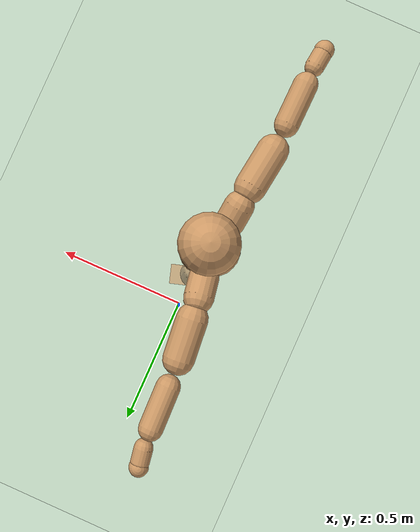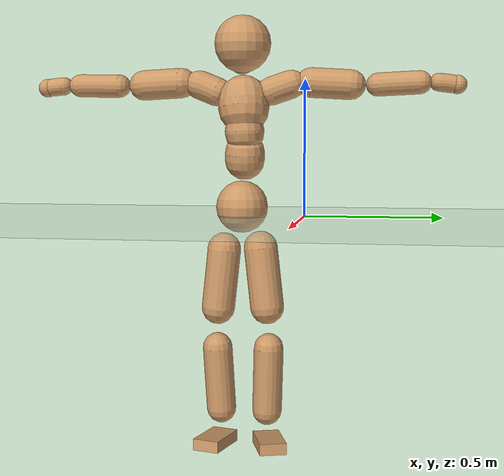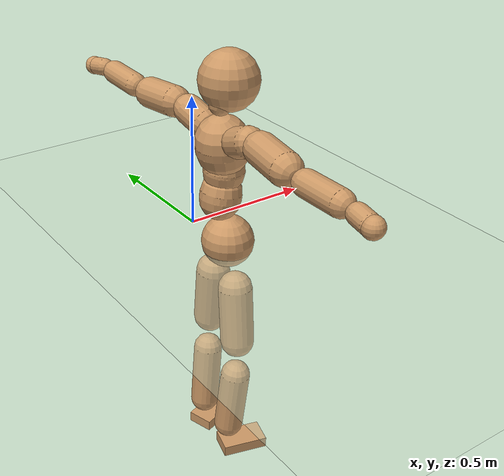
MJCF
<mujoco model="humanoid">
  <compiler coordinate="local"/>
  <default>
    <joint damping="0.0" armature="0.01" stiffness="0.0" limited="true"/>
    <geom conaffinity="1" condim="3" contype="7" margin="0.001" rgba="0.8 0.6 .4 1"/>
  </default>
  <asset>
    <texture type="skybox" builtin="gradient" rgb1=".4 .5 .6" rgb2="0 0 0" width="100" height="100"/>
    <texture builtin="flat" height="1278" mark="cross" markrgb="1 1 1" name="texgeom" random="0.01" rgb1="0.8 0.6 0.4" rgb2="0.8 0.6 0.4" type="cube" width="127"/>
    <texture builtin="checker" height="100" name="texplane" rgb1="0 0 0" rgb2="0.8 0.8 0.8" type="2d" width="100"/>
    <material name="MatPlane" reflectance="0.5" shininess="1" specular="1" texrepeat="60 60" texture="texplane"/>
    <material name="geom" texture="texgeom" texuniform="true"/>
  </asset>
  <worldbody>
    <light cutoff="100" diffuse="1 1 1" dir="-0 0 -1.3" directional="true" exponent="1" pos="0 0 1.3" specular=".1 .1 .1"/>
    <geom conaffinity="1" condim="3" name="floor" pos="0 0 0" rgba="0.8 0.9 0.8 1" size="100 100 .2" type="plane" material="MatPlane"/>
    <body name="Pelvis" pos="-0.0018 -0.2319 0.0331">
      <freejoint name="Pelvis"/>
      <geom type="sphere" contype="1" conaffinity="1" density="500" size="0.0962" pos="0.0000 0.0000 0.0000" name="Pelvis"/>
      <body name="L_Hip" pos="-0.0164 0.0595 -0.0796">
        <joint name="L_Hip_x" type="hinge" pos="0 0 0" axis="1 0 0" stiffness="800" damping="80" armature="0.02" range="-180.0000 180.0000"/>
        <joint name="L_Hip_y" type="hinge" pos="0 0 0" axis="0 1 0" stiffness="800" damping="80" armature="0.02" range="-180.0000 180.0000"/>
        <joint name="L_Hip_z" type="hinge" pos="0 0 0" axis="0 0 1" stiffness="800" damping="80" armature="0.02" range="-180.0000 180.0000"/>
        <geom type="capsule" contype="1" conaffinity="1" density="500" fromto="0.0012 0.0083 -0.0744 0.0049 0.0333 -0.2974" size="0.063" name="L_Hip"/>
        <body name="L_Knee" pos="0.0061 0.0416 -0.3718">
          <joint name="L_Knee_x" type="hinge" pos="0 0 0" axis="1 0 0" stiffness="800" damping="80" armature="0.02" range="-180.0000 180.0000"/>
          <joint name="L_Knee_y" type="hinge" pos="0 0 0" axis="0 1 0" stiffness="800" damping="80" armature="0.02" range="-180.0000 180.0000"/>
          <joint name="L_Knee_z" type="hinge" pos="0 0 0" axis="0 0 1" stiffness="800" damping="80" armature="0.02" range="-180.0000 180.0000"/>
          <geom type="capsule" contype="1" conaffinity="1" density="500" fromto="-0.0075 -0.0029 -0.0819 -0.0298 -0.0116 -0.3274" size="0.0554" name="L_Knee"/>
          <body name="L_Ankle" pos="-0.0373 -0.0145 -0.4093">
            <joint name="L_Ankle_x" type="hinge" pos="0 0 0" axis="1 0 0" stiffness="800" damping="80" armature="0.02" range="-180.0000 180.0000"/>
            <joint name="L_Ankle_y" type="hinge" pos="0 0 0" axis="0 1 0" stiffness="800" damping="80" armature="0.02" range="-180.0000 180.0000"/>
            <joint name="L_Ankle_z" type="hinge" pos="0 0 0" axis="0 0 1" stiffness="800" damping="80" armature="0.02" range="-180.0000 180.0000"/>
            <geom type="box" contype="1" conaffinity="1" density="500" pos="0.0594 0.0187 -0.0288" size="0.087 0.05 0.0214" quat="0.9884 0.0000 0.0000 0.1520" name="L_Ankle"/>
            <body name="L_Toe" pos="0.1187 0.0374 -0.0576">
              <joint name="L_Toe_x" type="hinge" pos="0 0 0" axis="1 0 0" stiffness="500" damping="50" armature="0.02" range="-180.0000 180.0000"/>
              <joint name="L_Toe_y" type="hinge" pos="0 0 0" axis="0 1 0" stiffness="500" damping="50" armature="0.02" range="-180.0000 180.0000"/>
              <joint name="L_Toe_z" type="hinge" pos="0 0 0" axis="0 0 1" stiffness="500" damping="50" armature="0.02" range="-180.0000 180.0000"/>
              <geom type="box" contype="1" conaffinity="1" density="500" pos="0.0000 0.0000 0.0275" size="0.0011 0.0025 0.001" quat="0.9876 0.0000 0.0000 0.1571" name="L_Toe"/>
            </body>
          </body>
        </body>
      </body>
      <body name="R_Hip" pos="-0.0121 -0.0615 -0.0874">
        <joint name="R_Hip_x" type="hinge" pos="0 0 0" axis="1 0 0" stiffness="800" damping="80" armature="0.02" range="-180.0000 180.0000"/>
        <joint name="R_Hip_y" type="hinge" pos="0 0 0" axis="0 1 0" stiffness="800" damping="80" armature="0.02" range="-180.0000 180.0000"/>
        <joint name="R_Hip_z" type="hinge" pos="0 0 0" axis="0 0 1" stiffness="800" damping="80" armature="0.02" range="-180.0000 180.0000"/>
        <geom type="capsule" contype="1" conaffinity="1" density="500" fromto="-0.0012 -0.0081 -0.0739 -0.0047 -0.0323 -0.2954" size="0.0625" name="R_Hip"/>
        <body name="R_Knee" pos="-0.0059 -0.0404 -0.3693">
          <joint name="R_Knee_x" type="hinge" pos="0 0 0" axis="1 0 0" stiffness="800" damping="80" armature="0.02" range="-180.0000 180.0000"/>
          <joint name="R_Knee_y" type="hinge" pos="0 0 0" axis="0 1 0" stiffness="800" damping="80" armature="0.02" range="-180.0000 180.0000"/>
          <joint name="R_Knee_z" type="hinge" pos="0 0 0" axis="0 0 1" stiffness="800" damping="80" armature="0.02" range="-180.0000 180.0000"/>
          <geom type="capsule" contype="1" conaffinity="1" density="500" fromto="-0.0069 0.0037 -0.0805 -0.0275 0.0146 -0.3219" size="0.0555" name="R_Knee"/>
          <body name="R_Ankle" pos="-0.0344 0.0183 -0.4024">
            <joint name="R_Ankle_x" type="hinge" pos="0 0 0" axis="1 0 0" stiffness="800" damping="80" armature="0.02" range="-180.0000 180.0000"/>
            <joint name="R_Ankle_y" type="hinge" pos="0 0 0" axis="0 1 0" stiffness="800" damping="80" armature="0.02" range="-180.0000 180.0000"/>
            <joint name="R_Ankle_z" type="hinge" pos="0 0 0" axis="0 0 1" stiffness="800" damping="80" armature="0.02" range="-180.0000 180.0000"/>
            <geom type="box" contype="1" conaffinity="1" density="500" pos="0.0629 -0.0169 -0.0298" size="0.0874 0.0504 0.0216" quat="0.9914 0.0000 0.0000 -0.1311" name="R_Ankle"/>
            <body name="R_Toe" pos="0.1258 -0.0339 -0.0595">
              <joint name="R_Toe_x" type="hinge" pos="0 0 0" axis="1 0 0" stiffness="500" damping="50" armature="0.02" range="-180.0000 180.0000"/>
              <joint name="R_Toe_y" type="hinge" pos="0 0 0" axis="0 1 0" stiffness="500" damping="50" armature="0.02" range="-180.0000 180.0000"/>
              <joint name="R_Toe_z" type="hinge" pos="0 0 0" axis="0 0 1" stiffness="500" damping="50" armature="0.02" range="-180.0000 180.0000"/>
              <geom type="box" contype="1" conaffinity="1" density="500" pos="0.0000 0.0000 0.0292" size="0.0011 0.0025 0.0011" quat="0.9925 0.0000 0.0000 -0.1219" name="R_Toe"/>
            </body>
          </body>
        </body>
      </body>
      <body name="Torso" pos="-0.0405 0.0042 0.1202">
        <joint name="Torso_x" type="hinge" pos="0 0 0" axis="1 0 0" stiffness="1000" damping="100" armature="0.02" range="-180.0000 180.0000"/>
        <joint name="Torso_y" type="hinge" pos="0 0 0" axis="0 1 0" stiffness="1000" damping="100" armature="0.02" range="-180.0000 180.0000"/>
        <joint name="Torso_z" type="hinge" pos="0 0 0" axis="0 0 1" stiffness="1000" damping="100" armature="0.02" range="-180.0000 180.0000"/>
        <geom type="capsule" contype="1" conaffinity="1" density="500" fromto="0.0144 0.0023 0.0784 0.0096 0.0016 0.0523" size="0.074121" name="Torso"/>
        <body name="Spine" pos="0.024 0.0039 0.1306">
          <joint name="Spine_x" type="hinge" pos="0 0 0" axis="1 0 0" stiffness="1000" damping="100" armature="0.02" range="-180.0000 180.0000"/>
          <joint name="Spine_y" type="hinge" pos="0 0 0" axis="0 1 0" stiffness="1000" damping="100" armature="0.02" range="-180.0000 180.0000"/>
          <joint name="Spine_z" type="hinge" pos="0 0 0" axis="0 0 1" stiffness="1000" damping="100" armature="0.02" range="-180.0000 180.0000"/>
          <geom type="capsule" contype="1" conaffinity="1" density="500" fromto="0.0020 -0.0013 0.0319 0.0013 -0.0008 0.0213" size="0.073377" name="Spine"/>
          <body name="Chest" pos="0.0033 -0.0021 0.0532">
            <joint name="Chest_x" type="hinge" pos="0 0 0" axis="1 0 0" stiffness="1000" damping="100" armature="0.02" range="-180.0000 180.0000"/>
            <joint name="Chest_y" type="hinge" pos="0 0 0" axis="0 1 0" stiffness="1000" damping="100" armature="0.02" range="-180.0000 180.0000"/>
            <joint name="Chest_z" type="hinge" pos="0 0 0" axis="0 0 1" stiffness="1000" damping="100" armature="0.02" range="-180.0000 180.0000"/>
            <geom type="capsule" contype="1" conaffinity="1" density="500" fromto="-0.0156 -0.0050 0.0856 -0.0104 -0.0033 0.0571" size="0.094209" name="Chest"/>
            <body name="Neck" pos="-0.0368 -0.0137 0.2066">
              <joint name="Neck_x" type="hinge" pos="0 0 0" axis="1 0 0" stiffness="500" damping="50" armature="0.02" range="-180.0000 180.0000"/>
              <joint name="Neck_y" type="hinge" pos="0 0 0" axis="0 1 0" stiffness="500" damping="50" armature="0.02" range="-180.0000 180.0000"/>
              <joint name="Neck_z" type="hinge" pos="0 0 0" axis="0 0 1" stiffness="500" damping="50" armature="0.02" range="-180.0000 180.0000"/>
              <geom type="capsule" contype="1" conaffinity="1" density="500" fromto="0.0094 0.0021 0.0169 0.0377 0.0082 0.0674" size="0.041943" name="Neck"/>
              <body name="Head" pos="0.0472 0.0103 0.0843">
                <joint name="Head_x" type="hinge" pos="0 0 0" axis="1 0 0" stiffness="500" damping="50" armature="0.02" range="-180.0000 180.0000"/>
                <joint name="Head_y" type="hinge" pos="0 0 0" axis="0 1 0" stiffness="500" damping="50" armature="0.02" range="-180.0000 180.0000"/>
                <joint name="Head_z" type="hinge" pos="0 0 0" axis="0 0 1" stiffness="500" damping="50" armature="0.02" range="-180.0000 180.0000"/>
                <geom type="sphere" contype="1" conaffinity="1" density="500" size="0.1042" pos="0.0000 0.0000 0.0000" name="Head"/>
              </body>
            </body>
            <body name="L_Thorax" pos="-0.0177 0.0711 0.1113">
              <joint name="L_Thorax_x" type="hinge" pos="0 0 0" axis="1 0 0" stiffness="500" damping="50" armature="0.02" range="-180.0000 180.0000"/>
              <joint name="L_Thorax_y" type="hinge" pos="0 0 0" axis="0 1 0" stiffness="500" damping="50" armature="0.02" range="-180.0000 180.0000"/>
              <joint name="L_Thorax_z" type="hinge" pos="0 0 0" axis="0 0 1" stiffness="500" damping="50" armature="0.02" range="-180.0000 180.0000"/>
              <geom type="capsule" contype="1" conaffinity="1" density="500" fromto="-0.0040 0.0248 0.0086 -0.0159 0.0990 0.0345" size="0.053" name="L_Thorax"/>
              <body name="L_Shoulder" pos="-0.0199 0.1238 0.0432">
                <joint name="L_Shoulder_x" type="hinge" pos="0 0 0" axis="1 0 0" stiffness="500" damping="50" armature="0.02" range="-720.0000 720.0000"/>
                <joint name="L_Shoulder_y" type="hinge" pos="0 0 0" axis="0 1 0" stiffness="500" damping="50" armature="0.02" range="-720.0000 720.0000"/>
                <joint name="L_Shoulder_z" type="hinge" pos="0 0 0" axis="0 0 1" stiffness="500" damping="50" armature="0.02" range="-720.0000 720.0000"/>
                <geom type="capsule" contype="1" conaffinity="1" density="500" fromto="-0.0046 0.0479 -0.0027 -0.0186 0.1914 -0.0106" size="0.0558" name="L_Shoulder"/>
                <body name="L_Elbow" pos="-0.0232 0.2393 -0.0133">
                  <joint name="L_Elbow_x" type="hinge" pos="0 0 0" axis="1 0 0" stiffness="500" damping="50" armature="0.02" range="-720.0000 720.0000"/>
                  <joint name="L_Elbow_y" type="hinge" pos="0 0 0" axis="0 1 0" stiffness="500" damping="50" armature="0.02" range="-720.0000 720.0000"/>
                  <joint name="L_Elbow_z" type="hinge" pos="0 0 0" axis="0 0 1" stiffness="500" damping="50" armature="0.02" range="-720.0000 720.0000"/>
                  <geom type="capsule" contype="1" conaffinity="1" density="500" fromto="-0.0012 0.0507 0.0024 -0.0050 0.2029 0.0096" size="0.0429" name="L_Elbow"/>
                  <body name="L_Wrist" pos="-0.0062 0.2536 0.012">
                    <joint name="L_Wrist_x" type="hinge" pos="0 0 0" axis="1 0 0" stiffness="300" damping="30" armature="0.02" range="-180.0000 180.0000"/>
                    <joint name="L_Wrist_y" type="hinge" pos="0 0 0" axis="0 1 0" stiffness="300" damping="30" armature="0.02" range="-180.0000 180.0000"/>
                    <joint name="L_Wrist_z" type="hinge" pos="0 0 0" axis="0 0 1" stiffness="300" damping="30" armature="0.02" range="-180.0000 180.0000"/>
                    <geom type="capsule" contype="1" conaffinity="1" density="500" fromto="-0.0030 0.0168 -0.0021 -0.0119 0.0671 -0.0084" size="0.0333" name="L_Wrist"/>
                    <body name="L_Hand" pos="-0.0149 0.0839 -0.0105">
                      <joint name="L_Hand_x" type="hinge" pos="0 0 0" axis="1 0 0" stiffness="300" damping="30" armature="0.02" range="-180.0000 180.0000"/>
                      <joint name="L_Hand_y" type="hinge" pos="0 0 0" axis="0 1 0" stiffness="300" damping="30" armature="0.02" range="-180.0000 180.0000"/>
                      <joint name="L_Hand_z" type="hinge" pos="0 0 0" axis="0 0 1" stiffness="300" damping="30" armature="0.02" range="-180.0000 180.0000"/>
                      <geom type="sphere" contype="1" conaffinity="1" density="500" size="0.0345" pos="0.0000 0.0000 0.0000" name="L_Hand"/>
                    </body>
                  </body>
                </body>
              </body>
            </body>
            <body name="R_Thorax" pos="-0.0234 -0.0825 0.1101">
              <joint name="R_Thorax_x" type="hinge" pos="0 0 0" axis="1 0 0" stiffness="500" damping="50" armature="0.02" range="-180.0000 180.0000"/>
              <joint name="R_Thorax_y" type="hinge" pos="0 0 0" axis="0 1 0" stiffness="500" damping="50" armature="0.02" range="-180.0000 180.0000"/>
              <joint name="R_Thorax_z" type="hinge" pos="0 0 0" axis="0 0 1" stiffness="500" damping="50" armature="0.02" range="-180.0000 180.0000"/>
              <geom type="capsule" contype="1" conaffinity="1" density="500" fromto="-0.0019 -0.0227 0.0091 -0.0078 -0.0907 0.0363" size="0.0529" name="R_Thorax"/>
              <body name="R_Shoulder" pos="-0.0097 -0.1134 0.0454">
                <joint name="R_Shoulder_x" type="hinge" pos="0 0 0" axis="1 0 0" stiffness="500" damping="50" armature="0.02" range="-720.0000 720.0000"/>
                <joint name="R_Shoulder_y" type="hinge" pos="0 0 0" axis="0 1 0" stiffness="500" damping="50" armature="0.02" range="-720.0000 720.0000"/>
                <joint name="R_Shoulder_z" type="hinge" pos="0 0 0" axis="0 0 1" stiffness="500" damping="50" armature="0.02" range="-720.0000 720.0000"/>
                <geom type="capsule" contype="1" conaffinity="1" density="500" fromto="-0.0064 -0.0491 -0.0023 -0.0255 -0.1965 -0.0091" size="0.0564" name="R_Shoulder"/>
                <body name="R_Elbow" pos="-0.0319 -0.2457 -0.0113">
                  <joint name="R_Elbow_x" type="hinge" pos="0 0 0" axis="1 0 0" stiffness="500" damping="50" armature="0.02" range="-720.0000 720.0000"/>
                  <joint name="R_Elbow_y" type="hinge" pos="0 0 0" axis="0 1 0" stiffness="500" damping="50" armature="0.02" range="-720.0000 720.0000"/>
                  <joint name="R_Elbow_z" type="hinge" pos="0 0 0" axis="0 0 1" stiffness="500" damping="50" armature="0.02" range="-720.0000 720.0000"/>
                  <geom type="capsule" contype="1" conaffinity="1" density="500" fromto="-0.0010 -0.0510 0.0008 -0.0041 -0.2042 0.0033" size="0.0435" name="R_Elbow"/>
                  <body name="R_Wrist" pos="-0.0051 -0.2552 0.0041">
                    <joint name="R_Wrist_x" type="hinge" pos="0 0 0" axis="1 0 0" stiffness="300" damping="30" armature="0.02" range="-180.0000 180.0000"/>
                    <joint name="R_Wrist_y" type="hinge" pos="0 0 0" axis="0 1 0" stiffness="300" damping="30" armature="0.02" range="-180.0000 180.0000"/>
                    <joint name="R_Wrist_z" type="hinge" pos="0 0 0" axis="0 0 1" stiffness="300" damping="30" armature="0.02" range="-180.0000 180.0000"/>
                    <geom type="capsule" contype="1" conaffinity="1" density="500" fromto="-0.0019 -0.0172 -0.0017 -0.0077 -0.0688 -0.0068" size="0.0339" name="R_Wrist"/>
                    <body name="R_Hand" pos="-0.0096 -0.086 -0.0085">
                      <joint name="R_Hand_x" type="hinge" pos="0 0 0" axis="1 0 0" stiffness="300" damping="30" armature="0.02" range="-180.0000 180.0000"/>
                      <joint name="R_Hand_y" type="hinge" pos="0 0 0" axis="0 1 0" stiffness="300" damping="30" armature="0.02" range="-180.0000 180.0000"/>
                      <joint name="R_Hand_z" type="hinge" pos="0 0 0" axis="0 0 1" stiffness="300" damping="30" armature="0.02" range="-180.0000 180.0000"/>
                      <geom type="sphere" contype="1" conaffinity="1" density="500" size="0.0350" pos="0.0000 0.0000 0.0000" name="R_Hand"/>
                    </body>
                  </body>
                </body>
              </body>
            </body>
          </body>
        </body>
      </body>
    </body>
  </worldbody>
  <actuator>
    <motor name="L_Hip_x" joint="L_Hip_x" gear="500"/>
    <motor name="L_Hip_y" joint="L_Hip_y" gear="500"/>
    <motor name="L_Hip_z" joint="L_Hip_z" gear="500"/>
    <motor name="L_Knee_x" joint="L_Knee_x" gear="500"/>
    <motor name="L_Knee_y" joint="L_Knee_y" gear="500"/>
    <motor name="L_Knee_z" joint="L_Knee_z" gear="500"/>
    <motor name="L_Ankle_x" joint="L_Ankle_x" gear="500"/>
    <motor name="L_Ankle_y" joint="L_Ankle_y" gear="500"/>
    <motor name="L_Ankle_z" joint="L_Ankle_z" gear="500"/>
    <motor name="L_Toe_x" joint="L_Toe_x" gear="500"/>
    <motor name="L_Toe_y" joint="L_Toe_y" gear="500"/>
    <motor name="L_Toe_z" joint="L_Toe_z" gear="500"/>
    <motor name="R_Hip_x" joint="R_Hip_x" gear="500"/>
    <motor name="R_Hip_y" joint="R_Hip_y" gear="500"/>
    <motor name="R_Hip_z" joint="R_Hip_z" gear="500"/>
    <motor name="R_Knee_x" joint="R_Knee_x" gear="500"/>
    <motor name="R_Knee_y" joint="R_Knee_y" gear="500"/>
    <motor name="R_Knee_z" joint="R_Knee_z" gear="500"/>
    <motor name="R_Ankle_x" joint="R_Ankle_x" gear="500"/>
    <motor name="R_Ankle_y" joint="R_Ankle_y" gear="500"/>
    <motor name="R_Ankle_z" joint="R_Ankle_z" gear="500"/>
    <motor name="R_Toe_x" joint="R_Toe_x" gear="500"/>
    <motor name="R_Toe_y" joint="R_Toe_y" gear="500"/>
    <motor name="R_Toe_z" joint="R_Toe_z" gear="500"/>
    <motor name="Torso_x" joint="Torso_x" gear="500"/>
    <motor name="Torso_y" joint="Torso_y" gear="500"/>
    <motor name="Torso_z" joint="Torso_z" gear="500"/>
    <motor name="Spine_x" joint="Spine_x" gear="500"/>
    <motor name="Spine_y" joint="Spine_y" gear="500"/>
    <motor name="Spine_z" joint="Spine_z" gear="500"/>
    <motor name="Chest_x" joint="Chest_x" gear="500"/>
    <motor name="Chest_y" joint="Chest_y" gear="500"/>
    <motor name="Chest_z" joint="Chest_z" gear="500"/>
    <motor name="Neck_x" joint="Neck_x" gear="500"/>
    <motor name="Neck_y" joint="Neck_y" gear="500"/>
    <motor name="Neck_z" joint="Neck_z" gear="500"/>
    <motor name="Head_x" joint="Head_x" gear="500"/>
    <motor name="Head_y" joint="Head_y" gear="500"/>
    <motor name="Head_z" joint="Head_z" gear="500"/>
    <motor name="L_Thorax_x" joint="L_Thorax_x" gear="500"/>
    <motor name="L_Thorax_y" joint="L_Thorax_y" gear="500"/>
    <motor name="L_Thorax_z" joint="L_Thorax_z" gear="500"/>
    <motor name="L_Shoulder_x" joint="L_Shoulder_x" gear="500"/>
    <motor name="L_Shoulder_y" joint="L_Shoulder_y" gear="500"/>
    <motor name="L_Shoulder_z" joint="L_Shoulder_z" gear="500"/>
    <motor name="L_Elbow_x" joint="L_Elbow_x" gear="500"/>
    <motor name="L_Elbow_y" joint="L_Elbow_y" gear="500"/>
    <motor name="L_Elbow_z" joint="L_Elbow_z" gear="500"/>
    <motor name="L_Wrist_x" joint="L_Wrist_x" gear="500"/>
    <motor name="L_Wrist_y" joint="L_Wrist_y" gear="500"/>
    <motor name="L_Wrist_z" joint="L_Wrist_z" gear="500"/>
    <motor name="L_Hand_x" joint="L_Hand_x" gear="500"/>
    <motor name="L_Hand_y" joint="L_Hand_y" gear="500"/>
    <motor name="L_Hand_z" joint="L_Hand_z" gear="500"/>
    <motor name="R_Thorax_x" joint="R_Thorax_x" gear="500"/>
    <motor name="R_Thorax_y" joint="R_Thorax_y" gear="500"/>
    <motor name="R_Thorax_z" joint="R_Thorax_z" gear="500"/>
    <motor name="R_Shoulder_x" joint="R_Shoulder_x" gear="500"/>
    <motor name="R_Shoulder_y" joint="R_Shoulder_y" gear="500"/>
    <motor name="R_Shoulder_z" joint="R_Shoulder_z" gear="500"/>
    <motor name="R_Elbow_x" joint="R_Elbow_x" gear="500"/>
    <motor name="R_Elbow_y" joint="R_Elbow_y" gear="500"/>
    <motor name="R_Elbow_z" joint="R_Elbow_z" gear="500"/>
    <motor name="R_Wrist_x" joint="R_Wrist_x" gear="500"/>
    <motor name="R_Wrist_y" joint="R_Wrist_y" gear="500"/>
    <motor name="R_Wrist_z" joint="R_Wrist_z" gear="500"/>
    <motor name="R_Hand_x" joint="R_Hand_x" gear="500"/>
    <motor name="R_Hand_y" joint="R_Hand_y" gear="500"/>
    <motor name="R_Hand_z" joint="R_Hand_z" gear="500"/>
  </actuator>
  <contact>
    <exclude body1="Torso" body2="Chest"/>
    <exclude body1="Head" body2="Chest"/>
    <exclude body1="R_Knee" body2="R_Toe"/>
    <exclude body1="R_Knee" body2="L_Ankle"/>
    <exclude body1="R_Knee" body2="L_Toe"/>
    <exclude body1="L_Knee" body2="L_Toe"/>
    <exclude body1="L_Knee" body2="R_Ankle"/>
    <exclude body1="L_Knee" body2="R_Toe"/>
    <exclude body1="L_Shoulder" body2="Chest"/>
    <exclude body1="R_Shoulder" body2="Chest"/>
  </contact>
  <sensor/>
  <size njmax="700" nconmax="700"/>
</mujoco>
